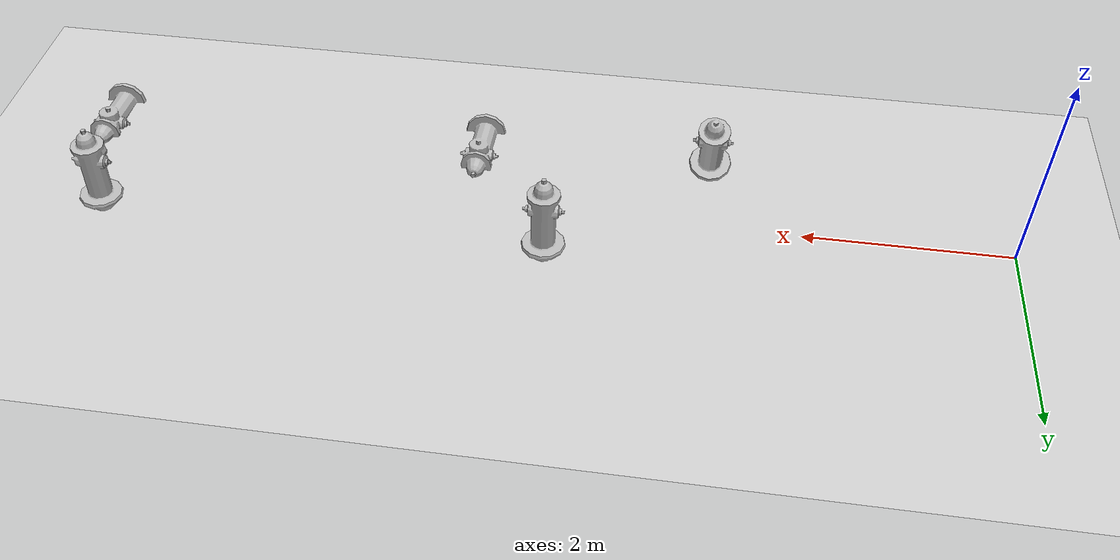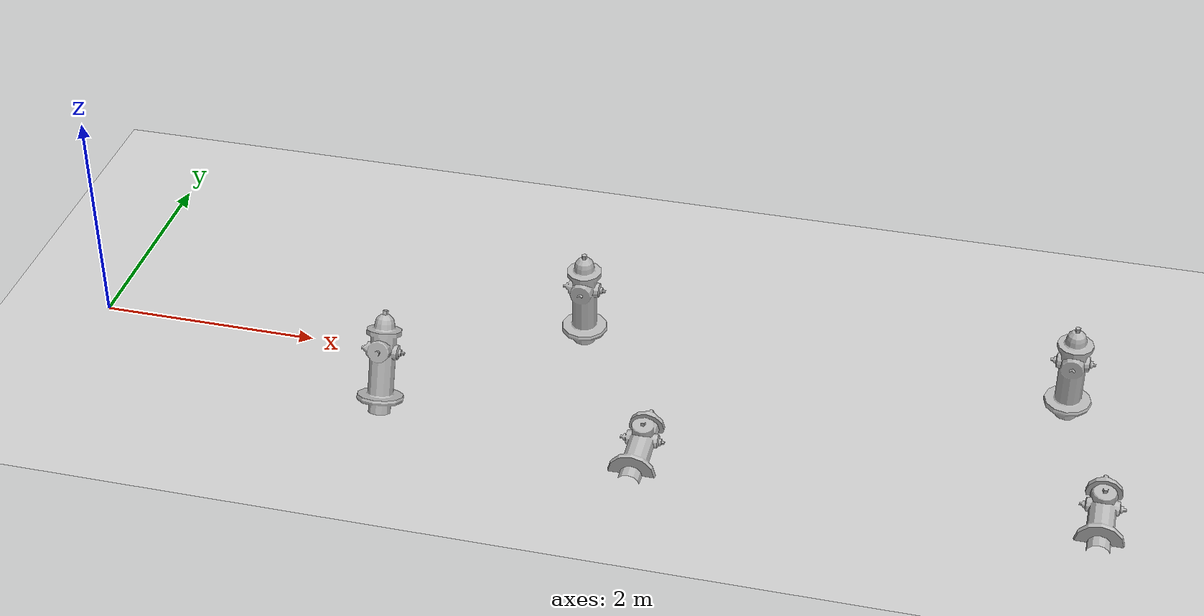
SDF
<sdf version="1.4">
 <world name="default">
  <include><uri>model://ground_plane</uri></include>
  <include><uri>model://sun</uri></include>
  <include>
   <static>true</static>
   <name>hyd_1</name>
   <pose>2.925 -0.8756 0 -0.3697 0 0</pose>
   <uri>model://fire_hydrant</uri>
  </include>
  <include>
   <static>true</static>
   <name>hyd_2</name>
   <pose>2.925 -0.8756 0 -0.3697 0 0</pose>
   <uri>model://fire_hydrant</uri>
  </include>
  <include>
   <static>true</static>
   <name>hyd_3</name>
   <pose>5.2708 -1.289 -0.020 -1.502 0 0</pose>
   <uri>model://fire_hydrant</uri>
  </include>
  <include>
   <static>true</static>
   <name>hyd_4</name>
   <pose>9.206 -1.24 -0.02 -1.502 0 0</pose>
   <uri>model://fire_hydrant</uri>
  </include>
  <include>
   <static>true</static>
   <name>hyd_5</name>
   <pose>4.4247 0.60 0 0 0 0</pose>
   <uri>model://fire_hydrant</uri>
  </include>
  <include>
   <static>true</static>
   <name>hyd_6</name>
   <pose>8.803 0.54 0 0 0 0</pose>
   <uri>model://fire_hydrant</uri>
  </include>
 </world>
</sdf>

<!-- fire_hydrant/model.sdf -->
<sdf version="1.5">
  <model name="fire_hydrant">
    <static>true</static>
    <link name="link">
      <collision name="collision">
        <geometry>
          <mesh>
            <uri>file://isr-testbed/fire_hydrant/meshes/fire_hydrant.dae</uri>
          </mesh>
        </geometry>
      </collision>
      <visual name="visual">
        <geometry>
          <mesh>
            <uri>file://isr-testbed/fire_hydrant/meshes/fire_hydrant.dae</uri>
          </mesh>
        </geometry>
      </visual>
    </link>
  </model>
</sdf>
